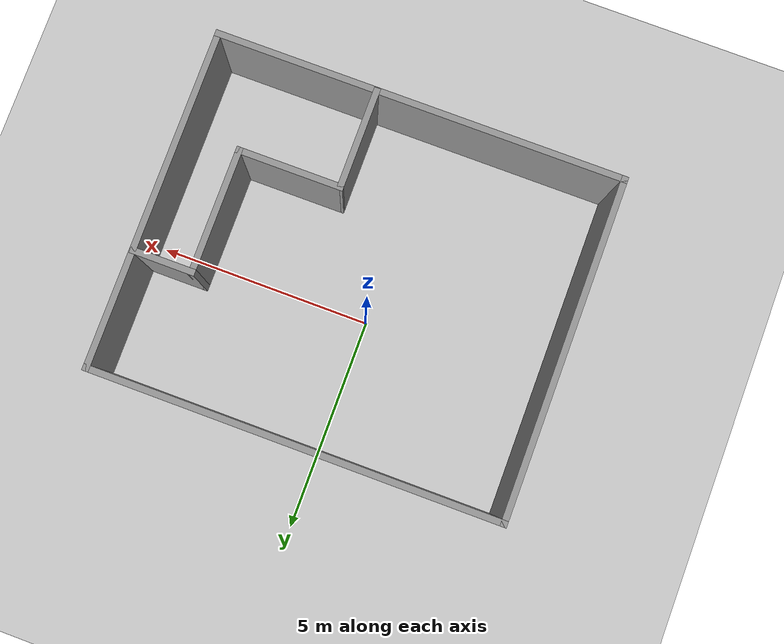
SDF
<sdf version="1.7">
 <world name="default">
  <light name="sun" type="directional">
   <pose>0 0 10 0 -0 0</pose>
   <diffuse>0.8 0.8 0.8 1</diffuse>
   <specular>0.2 0.2 0.2 1</specular>
   <attenuation>
    <range>1000</range>
    <constant>0.9</constant>
    <linear>0.01</linear>
    <quadratic>0.001</quadratic>
   </attenuation>
   <direction>-0.5 0.1 -0.9</direction>
   <spot><inner_angle>0</inner_angle><outer_angle>0</outer_angle><falloff>0</falloff></spot>
  </light>
  <model name="ground_plane">
   <static>1</static>
   <link name="link">
    <collision name="collision">
     <geometry><plane><normal>0 0 1</normal><size>100 100</size></plane></geometry>
     <surface><friction><ode><mu>100</mu><mu2>50</mu2></ode></friction></surface>
    </collision>
    <visual name="visual">
     <cast_shadows>0</cast_shadows>
     <geometry><plane><normal>0 0 1</normal><size>100 100</size></plane></geometry>
     <material>
      <script><uri>file://media/materials/scripts/gazebo.material</uri><name>Gazebo/Grey</name></script>
     </material>
    </visual>
   </link>
  </model>
  <gravity>0 0 -9.8</gravity>
  <magnetic_field>6e-06 2.3e-05 -4.2e-05</magnetic_field>
  <atmosphere type="adiabatic"/>
  <physics type="ode">
   <max_step_size>0.001</max_step_size>
   <real_time_factor>1</real_time_factor>
   <real_time_update_rate>1000</real_time_update_rate>
  </physics>
  <scene><ambient>0.4 0.4 0.4 1</ambient><background>0.7 0.7 0.7 1</background><shadows>1</shadows></scene>
  <audio><device>default</device></audio>
  <spherical_coordinates>
   <surface_model>EARTH_WGS84</surface_model>
   <latitude_deg>0</latitude_deg>
   <longitude_deg>0</longitude_deg>
   <elevation>0</elevation>
   <heading_deg>0</heading_deg>
  </spherical_coordinates>
  <model name="cmit_room">
   <pose>0.464192 -0.72522 0 0 -0 0</pose>
   <link name="Wall_1">
    <collision name="Wall_1_Collision">
     <geometry><box><size>9.6 0.15 2.5</size></box></geometry>
     <pose>0 0 1.25 0 -0 0</pose>
    </collision>
    <visual name="Wall_1_Visual">
     <pose>0 0 1.25 0 -0 0</pose>
     <geometry><box><size>9.6 0.15 2.5</size></box></geometry>
     <material>
      <script><uri>file://media/materials/scripts/gazebo.material</uri><name>Gazebo/Grey</name></script>
      <ambient>1 1 1 1</ambient>
     </material>
     <meta><layer>0</layer></meta>
    </visual>
    <pose>-0 -3.925 0 0 -0 0</pose>
   </link>
   <link name="Wall_11">
    <collision name="Wall_11_Collision">
     <geometry><box><size>8 0.15 2.5</size></box></geometry>
     <pose>0 0 1.25 0 -0 0</pose>
    </collision>
    <visual name="Wall_11_Visual">
     <pose>0 0 1.25 0 -0 0</pose>
     <geometry><box><size>8 0.15 2.5</size></box></geometry>
     <material>
      <script><uri>file://media/materials/scripts/gazebo.material</uri><name>Gazebo/Grey</name></script>
      <ambient>1 1 1 1</ambient>
     </material>
     <meta><layer>0</layer></meta>
    </visual>
    <pose>-4.725 0 0 0 -0 1.5708</pose>
   </link>
   <link name="Wall_12">
    <collision name="Wall_12_Collision">
     <geometry><box><size>9.6 0.15 2.5</size></box></geometry>
     <pose>0 0 1.25 0 -0 0</pose>
    </collision>
    <visual name="Wall_12_Visual">
     <pose>0 0 1.25 0 -0 0</pose>
     <geometry><box><size>9.6 0.15 2.5</size></box></geometry>
     <material>
      <script><uri>file://media/materials/scripts/gazebo.material</uri><name>Gazebo/Grey</name></script>
      <ambient>1 1 1 1</ambient>
     </material>
     <meta><layer>0</layer></meta>
    </visual>
    <pose>-0 3.925 0 0 -0 0</pose>
   </link>
   <link name="Wall_14">
    <collision name="Wall_14_Collision">
     <geometry><box><size>1.5 0.15 2.5</size></box></geometry>
     <pose>0 0 1.25 0 -0 0</pose>
    </collision>
    <visual name="Wall_14_Visual">
     <pose>0 0 1.25 0 -0 0</pose>
     <geometry><box><size>1.5 0.15 2.5</size></box></geometry>
     <material>
      <script><uri>file://media/materials/scripts/gazebo.material</uri><name>Gazebo/Grey</name></script>
      <ambient>1 1 1 1</ambient>
     </material>
     <meta><layer>0</layer></meta>
    </visual>
    <pose>4.03262 1.22052 0 0 -0 3.14159</pose>
   </link>
   <link name="Wall_15">
    <collision name="Wall_15_Collision">
     <geometry><box><size>3 0.15 2.5</size></box></geometry>
     <pose>0 0 1.25 0 -0 0</pose>
    </collision>
    <visual name="Wall_15_Visual">
     <pose>0 0 1.25 0 -0 0</pose>
     <geometry><box><size>3 0.15 2.5</size></box></geometry>
     <material>
      <script><uri>file://media/materials/scripts/gazebo.material</uri><name>Gazebo/Grey</name></script>
      <ambient>1 1 1 1</ambient>
     </material>
     <meta><layer>0</layer></meta>
    </visual>
    <pose>3.35762 -0.204478 0 0 -0 -1.5708</pose>
   </link>
   <link name="Wall_16">
    <collision name="Wall_16_Collision">
     <geometry><box><size>2.5 0.15 2.5</size></box></geometry>
     <pose>0 0 1.25 0 -0 0</pose>
    </collision>
    <visual name="Wall_16_Visual">
     <pose>0 0 1.25 0 -0 0</pose>
     <geometry><box><size>2.5 0.15 2.5</size></box></geometry>
     <material>
      <script><uri>file://media/materials/scripts/gazebo.material</uri><name>Gazebo/Grey</name></script>
      <ambient>1 1 1 1</ambient>
     </material>
     <meta><layer>0</layer></meta>
    </visual>
    <pose>2.18262 -1.62948 0 0 -0 3.14159</pose>
   </link>
   <link name="Wall_17">
    <collision name="Wall_17_Collision">
     <geometry><box><size>2.42896 0.15 2.5</size></box></geometry>
     <pose>0 0 1.25 0 -0 0</pose>
    </collision>
    <visual name="Wall_17_Visual">
     <pose>0 0 1.25 0 -0 0</pose>
     <geometry><box><size>2.42896 0.15 2.5</size></box></geometry>
     <material>
      <script><uri>file://media/materials/scripts/gazebo.material</uri><name>Gazebo/Grey</name></script>
      <ambient>1 1 1 1</ambient>
     </material>
     <meta><layer>0</layer></meta>
    </visual>
    <pose>1.00717 -2.76896 0 0 -0 -1.57119</pose>
   </link>
   <link name="Wall_6">
    <collision name="Wall_6_Collision">
     <geometry><box><size>8 0.15 2.5</size></box></geometry>
     <pose>0 0 1.25 0 -0 0</pose>
    </collision>
    <visual name="Wall_6_Visual">
     <pose>0 0 1.25 0 -0 0</pose>
     <geometry><box><size>8 0.15 2.5</size></box></geometry>
     <material>
      <script><uri>file://media/materials/scripts/gazebo.material</uri><name>Gazebo/Grey</name></script>
      <ambient>1 1 1 1</ambient>
     </material>
     <meta><layer>0</layer></meta>
    </visual>
    <pose>4.725 0 0 0 -0 1.5708</pose>
   </link>
   <static>1</static>
  </model>
 </world>
</sdf>
